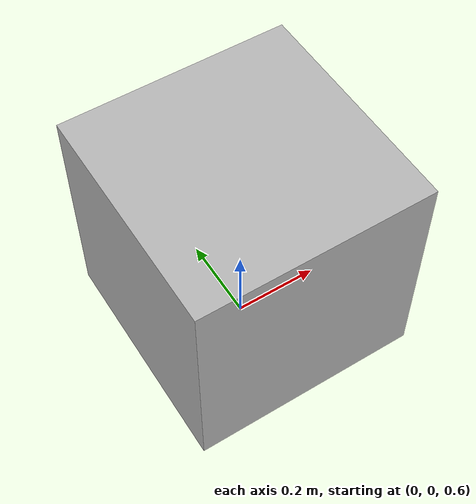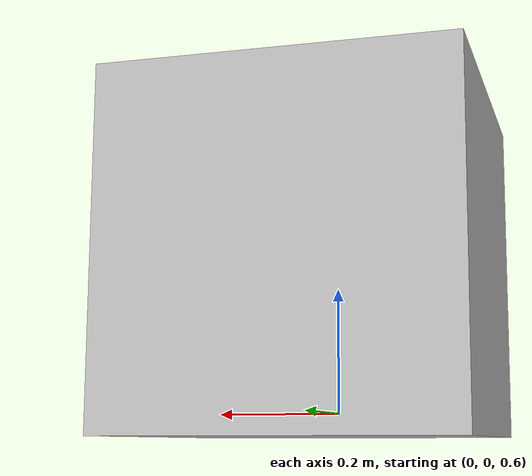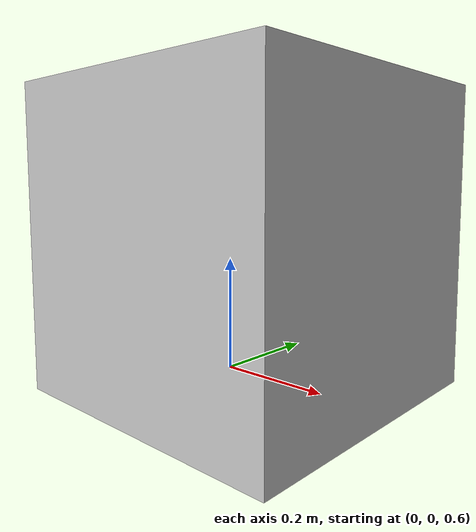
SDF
<?xml version="1.0" ?>
<sdf version="1.5">
  <model name="MBZIRC_blueCube">
    <link name="link">
      <pose>0 0 0.5 0 0 0</pose>
      <collision name="collision">
        <geometry>
          <mesh>
            <uri>model://MBZIRC_blueCube/meshes/MBZIRC_blueCube.stl</uri>
          </mesh>
        </geometry>
      </collision>
      <visual name="visual">
        <geometry>
          <mesh>
            <uri>model://MBZIRC_blueCube/meshes/MBZIRC_blueCube.dae</uri>
          </mesh>
        </geometry>
      </visual>
    </link>
  </model>
</sdf>
